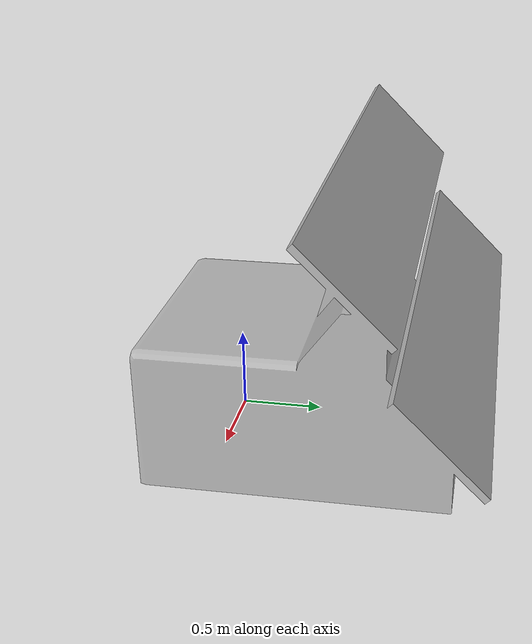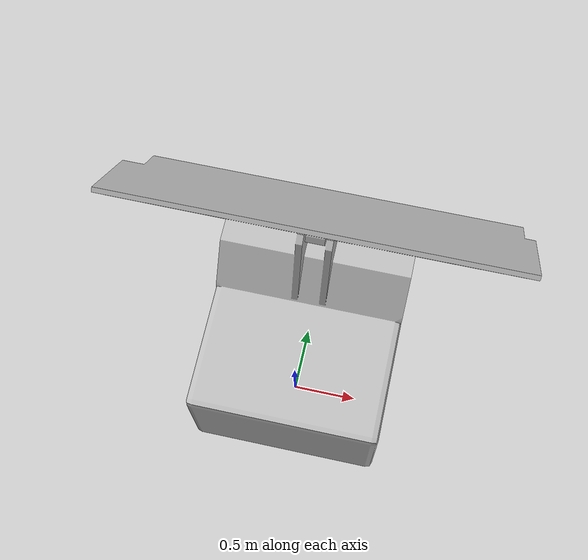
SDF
<?xml version="1.0" ?>
<sdf version="1.6">

  <model name="solar_array">

    <static>true</static>

    <link name="link">

      <visual name="visual">
        <geometry>
          <mesh>
            <uri>model://solar_array/meshes/solar_array.obj</uri>
            <scale>0.0254 0.0254 0.0254</scale>
          </mesh>
        </geometry>
      </visual>

      <collision name="collision">
        <geometry>
          <mesh>
            <uri>model://solar_array/meshes/solar_array.obj</uri>
            <scale>0.0252 0.0252 0.0252</scale>
          </mesh>
        </geometry>
      </collision>

      <collision name="collision_contact">
        <pose>0 0 0.25 0 0 0</pose>
        <geometry>
          <box>
            <size>1.498 0.99 0.897</size>
          </box>
        </geometry>
        <surface>
          <contact>
            <ode>
              <kp>1e6</kp>
              <kd>1</kd>
              <max_vel>0.1</max_vel>
              <min_depth>0.0015</min_depth>
            </ode>
          </contact>
        </surface>
      </collision>

    </link>

  </model>

</sdf>
